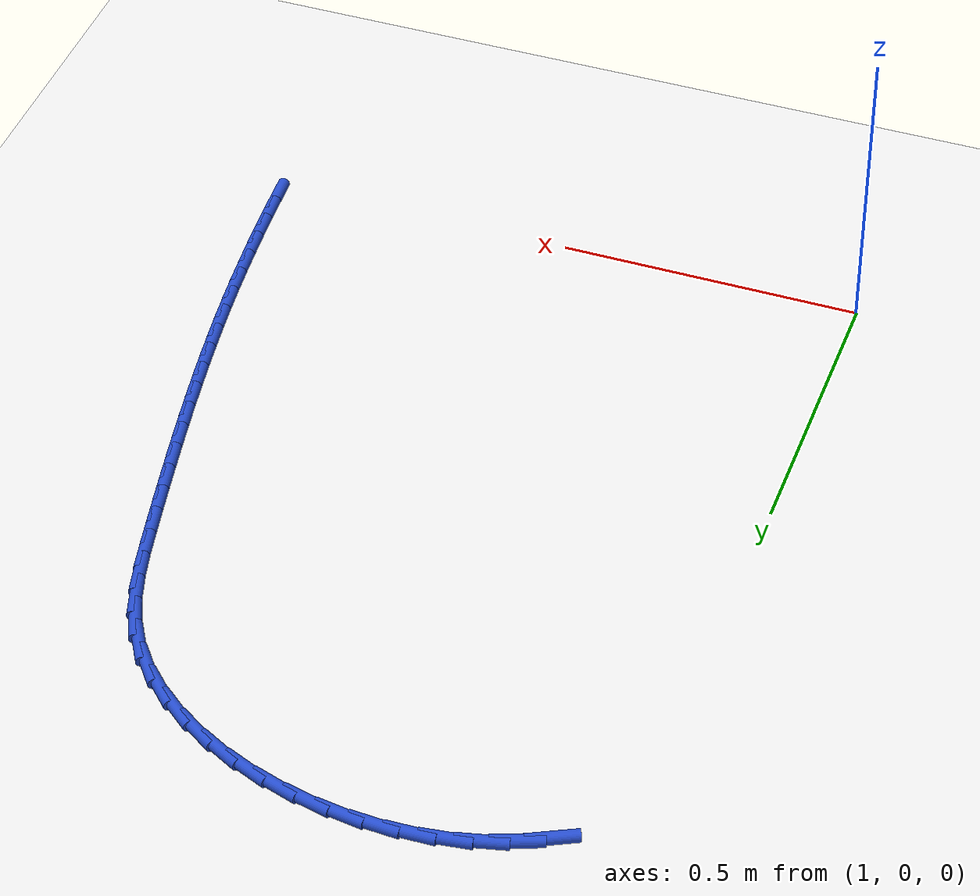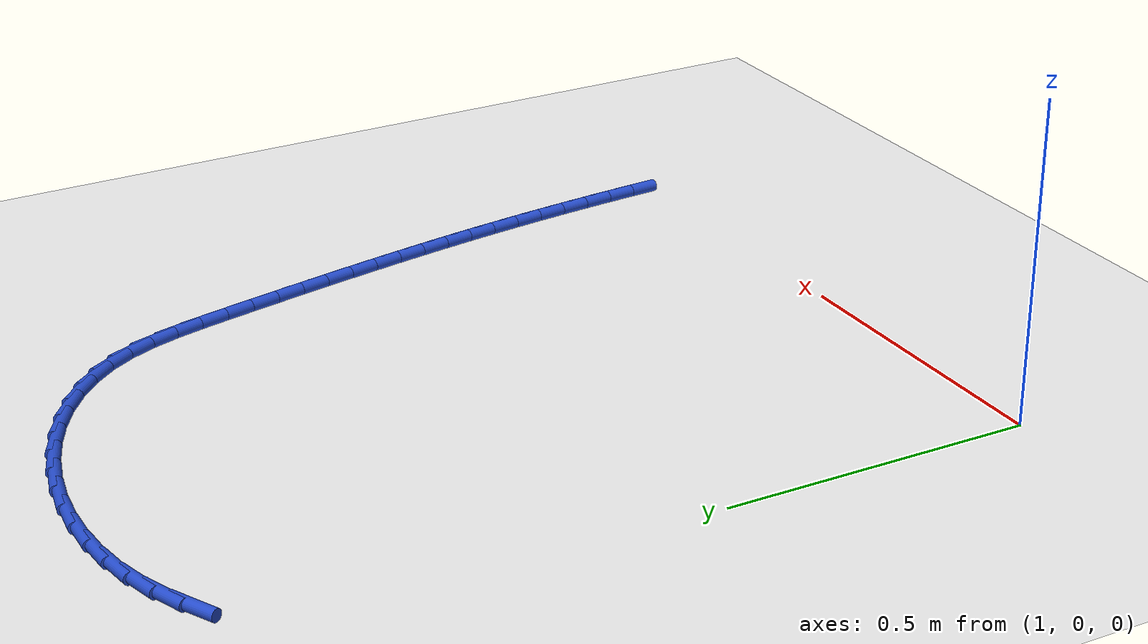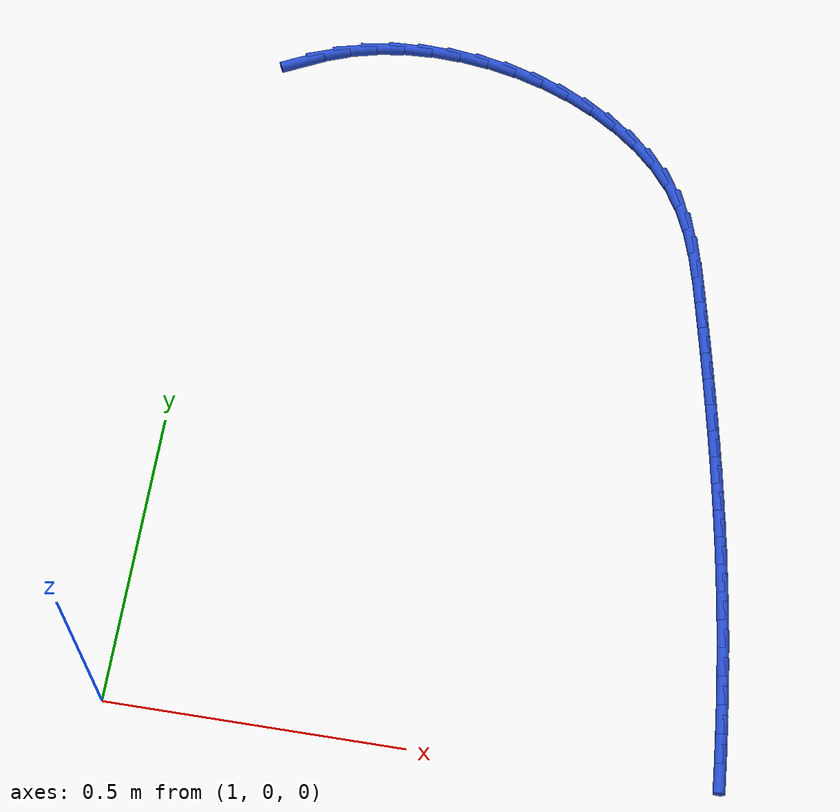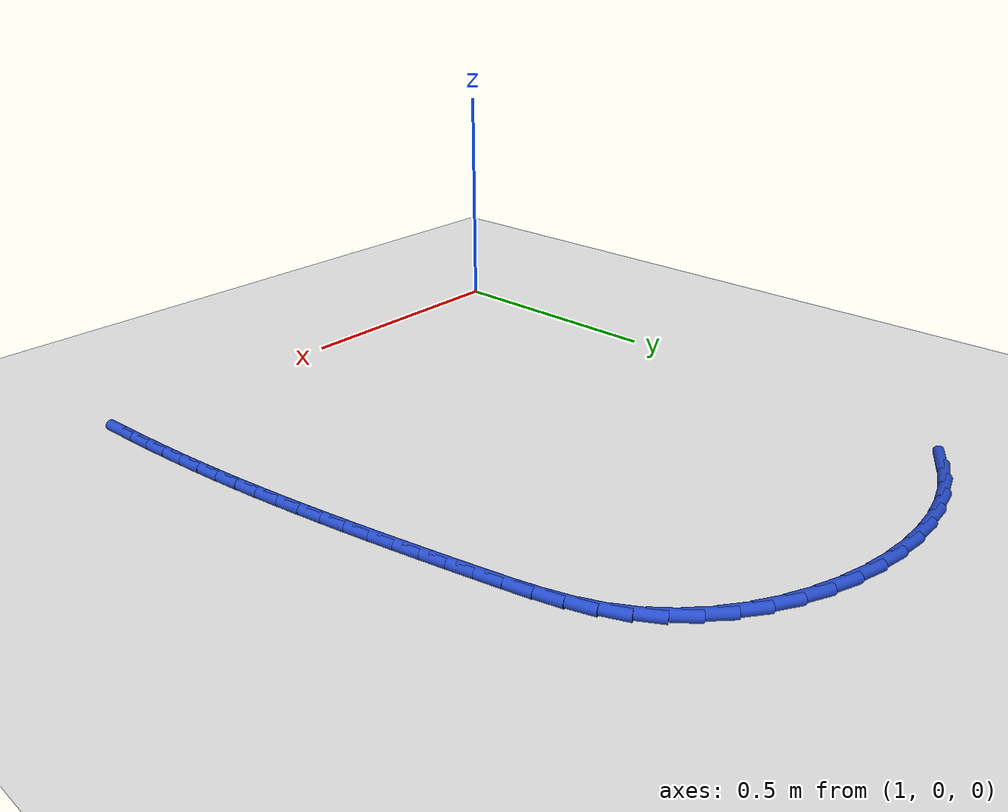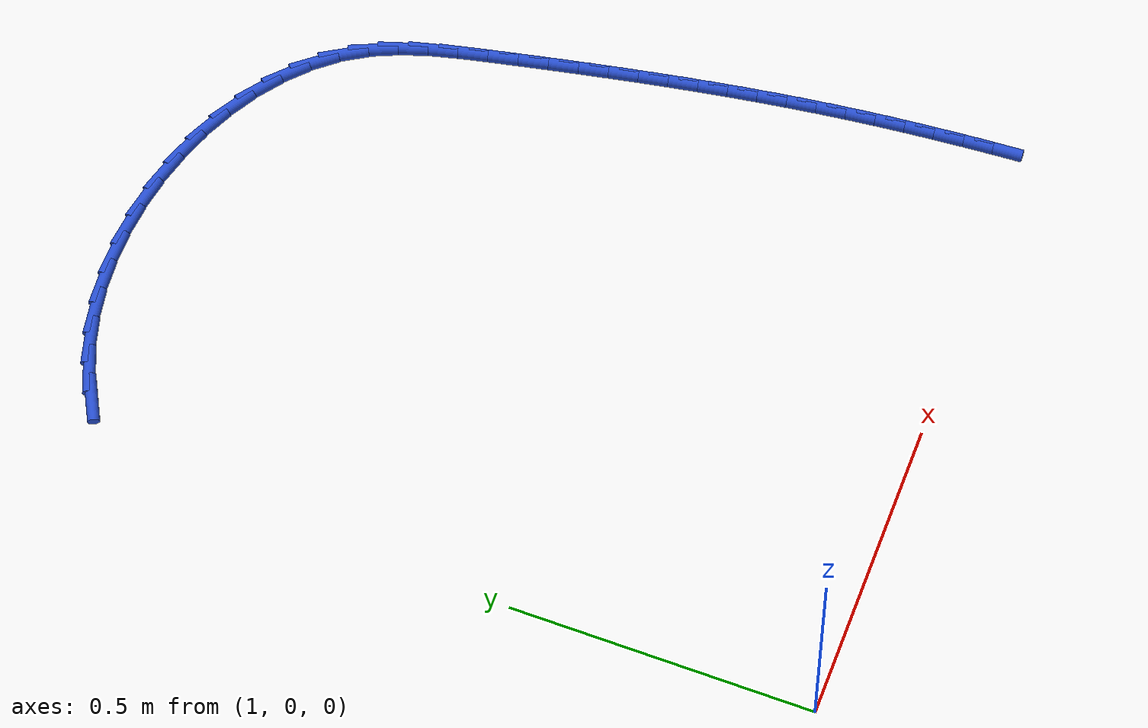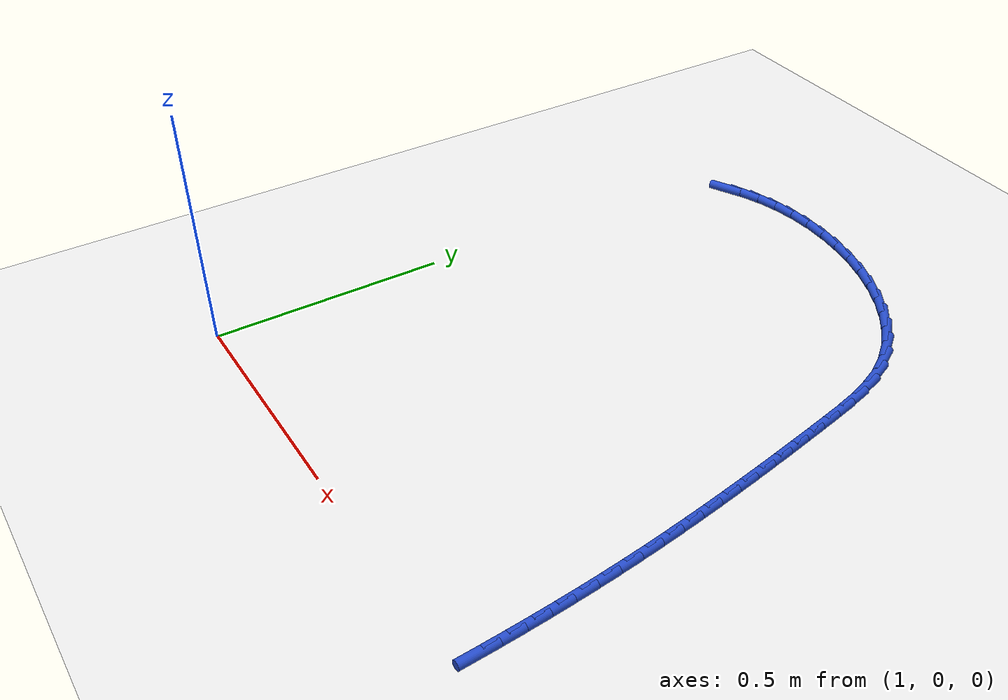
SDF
<sdf version="1.6">
 <world name="default">
  <model name="ground_plane">
   <static>1</static>
   <link name="link">
    <collision name="collision">
     <geometry><plane><normal>0 0 1</normal><size>100 100</size></plane></geometry>
     <surface><friction><ode><mu>100</mu><mu2>50</mu2></ode></friction></surface>
    </collision>
    <visual name="visual">
     <cast_shadows>0</cast_shadows>
     <geometry><plane><normal>0 0 1</normal><size>100 100</size></plane></geometry>
     <material>
      <script><uri>file://media/materials/scripts/gazebo.material</uri><name>Gazebo/WhiteGlow</name></script>
     </material>
    </visual>
   </link>
  </model>
  <model name="line">
   <link name="link_37">
    <pose>1.101944827154482 1.2344238282367026 0.01 0 1.57 0.4569146160596602</pose>
    <collision name="collision">
     <geometry><cylinder><radius>0.01</radius><length>0.08</length></cylinder></geometry>
    </collision>
    <visual name="visual">
     <material>
      <script><name>Gazebo/Blue</name><uri>file://media/materials/scripts/gazebo.material</uri></script>
     </material>
     <geometry><cylinder><radius>0.01</radius><length>0.08</length></cylinder></geometry>
    </visual>
   </link>
   <link name="link_38">
    <pose>1.146088931741145 1.2561255940719298 0.01 0 1.57 0.34975207894453036</pose>
    <collision name="collision">
     <geometry><cylinder><radius>0.01</radius><length>0.08</length></cylinder></geometry>
    </collision>
    <visual name="visual">
     <material>
      <script><name>Gazebo/Blue</name><uri>file://media/materials/scripts/gazebo.material</uri></script>
     </material>
     <geometry><cylinder><radius>0.01</radius><length>0.08</length></cylinder></geometry>
    </visual>
   </link>
   <link name="link_39">
    <pose>1.1928035203747764 1.2731646265144851 0.01 0 1.57 0.2366582090059286</pose>
    <collision name="collision">
     <geometry><cylinder><radius>0.01</radius><length>0.08</length></cylinder></geometry>
    </collision>
    <visual name="visual">
     <material>
      <script><name>Gazebo/Blue</name><uri>file://media/materials/scripts/gazebo.material</uri></script>
     </material>
     <geometry><cylinder><radius>0.01</radius><length>0.08</length></cylinder></geometry>
    </visual>
   </link>
   <link name="link_40">
    <pose>1.2420328990798146 1.2850376531378502 0.01 0 1.57 0.1330069167161616</pose>
    <collision name="collision">
     <geometry><cylinder><radius>0.01</radius><length>0.08</length></cylinder></geometry>
    </collision>
    <visual name="visual">
     <material>
      <script><name>Gazebo/Blue</name><uri>file://media/materials/scripts/gazebo.material</uri></script>
     </material>
     <geometry><cylinder><radius>0.01</radius><length>0.08</length></cylinder></geometry>
    </visual>
   </link>
   <link name="link_41">
    <pose>1.2931598435172316 1.2918782768268497 0.01 0 1.57 0.03750152560459104</pose>
    <collision name="collision">
     <geometry><cylinder><radius>0.01</radius><length>0.08</length></cylinder></geometry>
    </collision>
    <visual name="visual">
     <material>
      <script><name>Gazebo/Blue</name><uri>file://media/materials/scripts/gazebo.material</uri></script>
     </material>
     <geometry><cylinder><radius>0.01</radius><length>0.08</length></cylinder></geometry>
    </visual>
   </link>
   <link name="link_42">
    <pose>1.345546260996247 1.2938437688890414 0.01 0 1.57 -0.05187724870338346</pose>
    <collision name="collision">
     <geometry><cylinder><radius>0.01</radius><length>0.08</length></cylinder></geometry>
    </collision>
    <visual name="visual">
     <material>
      <script><name>Gazebo/Blue</name><uri>file://media/materials/scripts/gazebo.material</uri></script>
     </material>
     <geometry><cylinder><radius>0.01</radius><length>0.08</length></cylinder></geometry>
    </visual>
   </link>
   <link name="link_43">
    <pose>1.3985540588260812 1.2910914006319811 0.01 0 1.57 -0.137137323295058</pose>
    <collision name="collision">
     <geometry><cylinder><radius>0.01</radius><length>0.08</length></cylinder></geometry>
    </collision>
    <visual name="visual">
     <material>
      <script><name>Gazebo/Blue</name><uri>file://media/materials/scripts/gazebo.material</uri></script>
     </material>
     <geometry><cylinder><radius>0.01</radius><length>0.08</length></cylinder></geometry>
    </visual>
   </link>
   <link name="link_44">
    <pose>1.4515451443159546 1.2837784433632267 0.01 0 1.57 -0.22023411728320377</pose>
    <collision name="collision">
     <geometry><cylinder><radius>0.01</radius><length>0.08</length></cylinder></geometry>
    </collision>
    <visual name="visual">
     <material>
      <script><name>Gazebo/Blue</name><uri>file://media/materials/scripts/gazebo.material</uri></script>
     </material>
     <geometry><cylinder><radius>0.01</radius><length>0.08</length></cylinder></geometry>
    </visual>
   </link>
   <link name="link_45">
    <pose>1.5038814247750873 1.2720621683903344 0.01 0 1.57 -0.30308590247316947</pose>
    <collision name="collision">
     <geometry><cylinder><radius>0.01</radius><length>0.08</length></cylinder></geometry>
    </collision>
    <visual name="visual">
     <material>
      <script><name>Gazebo/Blue</name><uri>file://media/materials/scripts/gazebo.material</uri></script>
     </material>
     <geometry><cylinder><radius>0.01</radius><length>0.08</length></cylinder></geometry>
    </visual>
   </link>
   <link name="link_46">
    <pose>1.554924807512699 1.2560998470208609 0.01 0 1.57 -0.3876149464044524</pose>
    <collision name="collision">
     <geometry><cylinder><radius>0.01</radius><length>0.08</length></cylinder></geometry>
    </collision>
    <visual name="visual">
     <material>
      <script><name>Gazebo/Blue</name><uri>file://media/materials/scripts/gazebo.material</uri></script>
     </material>
     <geometry><cylinder><radius>0.01</radius><length>0.08</length></cylinder></geometry>
    </visual>
   </link>
   <link name="link_47">
    <pose>1.60403719983801 1.2360487505623643 0.01 0 1.57 -0.4757927429763021</pose>
    <collision name="collision">
     <geometry><cylinder><radius>0.01</radius><length>0.08</length></cylinder></geometry>
    </collision>
    <visual name="visual">
     <material>
      <script><name>Gazebo/Blue</name><uri>file://media/materials/scripts/gazebo.material</uri></script>
     </material>
     <geometry><cylinder><radius>0.01</radius><length>0.08</length></cylinder></geometry>
    </visual>
   </link>
   <link name="link_48">
    <pose>1.6505805090602406 1.2120661503224 0.01 0 1.57 -0.5696684634232014</pose>
    <collision name="collision">
     <geometry><cylinder><radius>0.01</radius><length>0.08</length></cylinder></geometry>
    </collision>
    <visual name="visual">
     <material>
      <script><name>Gazebo/Blue</name><uri>file://media/materials/scripts/gazebo.material</uri></script>
     </material>
     <geometry><cylinder><radius>0.01</radius><length>0.08</length></cylinder></geometry>
    </visual>
   </link>
   <link name="link_49">
    <pose>1.6939166424886103 1.1843093176085253 0.01 0 1.57 -0.6713519102458148</pose>
    <collision name="collision">
     <geometry><cylinder><radius>0.01</radius><length>0.08</length></cylinder></geometry>
    </collision>
    <visual name="visual">
     <material>
      <script><name>Gazebo/Blue</name><uri>file://media/materials/scripts/gazebo.material</uri></script>
     </material>
     <geometry><cylinder><radius>0.01</radius><length>0.08</length></cylinder></geometry>
    </visual>
   </link>
   <link name="link_50">
    <pose>1.73340750743234 1.1529355237282974 0.01 0 1.57 -0.7829065080619406</pose>
    <collision name="collision">
     <geometry><cylinder><radius>0.01</radius><length>0.08</length></cylinder></geometry>
    </collision>
    <visual name="visual">
     <material>
      <script><name>Gazebo/Blue</name><uri>file://media/materials/scripts/gazebo.material</uri></script>
     </material>
     <geometry><cylinder><radius>0.01</radius><length>0.08</length></cylinder></geometry>
    </visual>
   </link>
   <link name="link_51">
    <pose>1.7684150112006496 1.1181020399892734 0.01 0 1.57 -0.9060909009477038</pose>
    <collision name="collision">
     <geometry><cylinder><radius>0.01</radius><length>0.08</length></cylinder></geometry>
    </collision>
    <visual name="visual">
     <material>
      <script><name>Gazebo/Blue</name><uri>file://media/materials/scripts/gazebo.material</uri></script>
     </material>
     <geometry><cylinder><radius>0.01</radius><length>0.08</length></cylinder></geometry>
    </visual>
   </link>
   <link name="link_52">
    <pose>1.7983010611027588 1.0799661376990095 0.01 0 1.57 -1.0411979860862466</pose>
    <collision name="collision">
     <geometry><cylinder><radius>0.01</radius><length>0.08</length></cylinder></geometry>
    </collision>
    <visual name="visual">
     <material>
      <script><name>Gazebo/Blue</name><uri>file://media/materials/scripts/gazebo.material</uri></script>
     </material>
     <geometry><cylinder><radius>0.01</radius><length>0.08</length></cylinder></geometry>
    </visual>
   </link>
   <link name="link_53">
    <pose>1.8224604310953054 1.038694708180517 0.01 0 1.57 -1.1679520217540105</pose>
    <collision name="collision">
     <geometry><cylinder><radius>0.01</radius><length>0.08</length></cylinder></geometry>
    </collision>
    <visual name="visual">
     <material>
      <script><name>Gazebo/Blue</name><uri>file://media/materials/scripts/gazebo.material</uri></script>
     </material>
     <geometry><cylinder><radius>0.01</radius><length>0.08</length></cylinder></geometry>
    </visual>
   </link>
   <link name="link_54">
    <pose>1.8411996132791808 0.9947215012083546 0.01 0 1.57 -1.2624683397445804</pose>
    <collision name="collision">
     <geometry><cylinder><radius>0.01</radius><length>0.08</length></cylinder></geometry>
    </collision>
    <visual name="visual">
     <material>
      <script><name>Gazebo/Blue</name><uri>file://media/materials/scripts/gazebo.material</uri></script>
     </material>
     <geometry><cylinder><radius>0.01</radius><length>0.08</length></cylinder></geometry>
    </visual>
   </link>
   <link name="link_55">
    <pose>1.8558328100688124 0.9487752217639905 0.01 0 1.57 -1.3238297464606992</pose>
    <collision name="collision">
     <geometry><cylinder><radius>0.01</radius><length>0.08</length></cylinder></geometry>
    </collision>
    <visual name="visual">
     <material>
      <script><name>Gazebo/Blue</name><uri>file://media/materials/scripts/gazebo.material</uri></script>
     </material>
     <geometry><cylinder><radius>0.01</radius><length>0.08</length></cylinder></geometry>
    </visual>
   </link>
   <link name="link_56">
    <pose>1.8677263492898408 0.9015998318538947 0.01 0 1.57 -1.3535588076388507</pose>
    <collision name="collision">
     <geometry><cylinder><radius>0.01</radius><length>0.08</length></cylinder></geometry>
    </collision>
    <visual name="visual">
     <material>
      <script><name>Gazebo/Blue</name><uri>file://media/materials/scripts/gazebo.material</uri></script>
     </material>
     <geometry><cylinder><radius>0.01</radius><length>0.08</length></cylinder></geometry>
    </visual>
   </link>
   <link name="link_57">
    <pose>1.8782460705761206 0.8539390243458698 0.01 0 1.57 -1.3600616770433782</pose>
    <collision name="collision">
     <geometry><cylinder><radius>0.01</radius><length>0.08</length></cylinder></geometry>
    </collision>
    <visual name="visual">
     <material>
      <script><name>Gazebo/Blue</name><uri>file://media/materials/scripts/gazebo.material</uri></script>
     </material>
     <geometry><cylinder><radius>0.01</radius><length>0.08</length></cylinder></geometry>
    </visual>
   </link>
   <link name="link_58">
    <pose>1.8884251988642933 0.8063531226225019 0.01 0 1.57 -1.363895592016477</pose>
    <collision name="collision">
     <geometry><cylinder><radius>0.01</radius><length>0.08</length></cylinder></geometry>
    </collision>
    <visual name="visual">
     <material>
      <script><name>Gazebo/Blue</name><uri>file://media/materials/scripts/gazebo.material</uri></script>
     </material>
     <geometry><cylinder><radius>0.01</radius><length>0.08</length></cylinder></geometry>
    </visual>
   </link>
   <link name="link_59">
    <pose>1.8983857962504922 0.7589001287245609 0.01 0 1.57 -1.3685308264803924</pose>
    <collision name="collision">
     <geometry><cylinder><radius>0.01</radius><length>0.08</length></cylinder></geometry>
    </collision>
    <visual name="visual">
     <material>
      <script><name>Gazebo/Blue</name><uri>file://media/materials/scripts/gazebo.material</uri></script>
     </material>
     <geometry><cylinder><radius>0.01</radius><length>0.08</length></cylinder></geometry>
    </visual>
   </link>
   <link name="link_60">
    <pose>1.908095299466066 0.71155280019286 0.01 0 1.57 -1.373969089016939</pose>
    <collision name="collision">
     <geometry><cylinder><radius>0.01</radius><length>0.08</length></cylinder></geometry>
    </collision>
    <visual name="visual">
     <material>
      <script><name>Gazebo/Blue</name><uri>file://media/materials/scripts/gazebo.material</uri></script>
     </material>
     <geometry><cylinder><radius>0.01</radius><length>0.08</length></cylinder></geometry>
    </visual>
   </link>
   <link name="link_61">
    <pose>1.9175211452423655 0.6642838945682128 0.01 0 1.57 -1.3802098450093578</pose>
    <collision name="collision">
     <geometry><cylinder><radius>0.01</radius><length>0.08</length></cylinder></geometry>
    </collision>
    <visual name="visual">
     <material>
      <script><name>Gazebo/Blue</name><uri>file://media/materials/scripts/gazebo.material</uri></script>
     </material>
     <geometry><cylinder><radius>0.01</radius><length>0.08</length></cylinder></geometry>
    </visual>
   </link>
   <link name="link_62">
    <pose>1.9266307703107397 0.6170661693914327 0.01 0 1.57 -1.3872501850786234</pose>
    <collision name="collision">
     <geometry><cylinder><radius>0.01</radius><length>0.08</length></cylinder></geometry>
    </collision>
    <visual name="visual">
     <material>
      <script><name>Gazebo/Blue</name><uri>file://media/materials/scripts/gazebo.material</uri></script>
     </material>
     <geometry><cylinder><radius>0.01</radius><length>0.08</length></cylinder></geometry>
    </visual>
   </link>
   <link name="link_63">
    <pose>1.9353916114025382 0.569872382203334 0.01 0 1.57 -1.3950846939514612</pose>
    <collision name="collision">
     <geometry><cylinder><radius>0.01</radius><length>0.08</length></cylinder></geometry>
    </collision>
    <visual name="visual">
     <material>
      <script><name>Gazebo/Blue</name><uri>file://media/materials/scripts/gazebo.material</uri></script>
     </material>
     <geometry><cylinder><radius>0.01</radius><length>0.08</length></cylinder></geometry>
    </visual>
   </link>
   <link name="link_64">
    <pose>1.9437711052491107 0.5226752905447302 0.01 0 1.57 -1.403705322986966</pose>
    <collision name="collision">
     <geometry><cylinder><radius>0.01</radius><length>0.08</length></cylinder></geometry>
    </collision>
    <visual name="visual">
     <material>
      <script><name>Gazebo/Blue</name><uri>file://media/materials/scripts/gazebo.material</uri></script>
     </material>
     <geometry><cylinder><radius>0.01</radius><length>0.08</length></cylinder></geometry>
    </visual>
   </link>
   <link name="link_65">
    <pose>1.9517366885818068 0.47544765195643496 0.01 0 1.57 -1.4131012701373682</pose>
    <collision name="collision">
     <geometry><cylinder><radius>0.01</radius><length>0.08</length></cylinder></geometry>
    </collision>
    <visual name="visual">
     <material>
      <script><name>Gazebo/Blue</name><uri>file://media/materials/scripts/gazebo.material</uri></script>
     </material>
     <geometry><cylinder><radius>0.01</radius><length>0.08</length></cylinder></geometry>
    </visual>
   </link>
   <link name="link_66">
    <pose>1.9592557981319767 0.42816222397926196 0.01 0 1.57 -1.4232588716117494</pose>
    <collision name="collision">
     <geometry><cylinder><radius>0.01</radius><length>0.08</length></cylinder></geometry>
    </collision>
    <visual name="visual">
     <material>
      <script><name>Gazebo/Blue</name><uri>file://media/materials/scripts/gazebo.material</uri></script>
     </material>
     <geometry><cylinder><radius>0.01</radius><length>0.08</length></cylinder></geometry>
    </visual>
   </link>
   <link name="link_67">
    <pose>1.9662958706309694 0.3807917641540243 0.01 0 1.57 -1.4341615099160814</pose>
    <collision name="collision">
     <geometry><cylinder><radius>0.01</radius><length>0.08</length></cylinder></geometry>
    </collision>
    <visual name="visual">
     <material>
      <script><name>Gazebo/Blue</name><uri>file://media/materials/scripts/gazebo.material</uri></script>
     </material>
     <geometry><cylinder><radius>0.01</radius><length>0.08</length></cylinder></geometry>
    </visual>
   </link>
   <link name="link_68">
    <pose>1.9728243428101344 0.3333090300215366 0.01 0 1.57 -1.4457895019869569</pose>
    <collision name="collision">
     <geometry><cylinder><radius>0.01</radius><length>0.08</length></cylinder></geometry>
    </collision>
    <visual name="visual">
     <material>
      <script><name>Gazebo/Blue</name><uri>file://media/materials/scripts/gazebo.material</uri></script>
     </material>
     <geometry><cylinder><radius>0.01</radius><length>0.08</length></cylinder></geometry>
    </visual>
   </link>
   <link name="link_69">
    <pose>1.978808653214574 0.285686780562777 0.01 0 1.57 -1.457825893301726</pose>
    <collision name="collision">
     <geometry><cylinder><radius>0.01</radius><length>0.08</length></cylinder></geometry>
    </collision>
    <visual name="visual">
     <material>
      <script><name>Gazebo/Blue</name><uri>file://media/materials/scripts/gazebo.material</uri></script>
     </material>
     <geometry><cylinder><radius>0.01</radius><length>0.08</length></cylinder></geometry>
    </visual>
   </link>
   <link name="link_70">
    <pose>1.9842293056223346 0.23790814888400266 0.01 0 1.57 -1.4692637544936353</pose>
    <collision name="collision">
     <geometry><cylinder><radius>0.01</radius><length>0.08</length></cylinder></geometry>
    </collision>
    <visual name="visual">
     <material>
      <script><name>Gazebo/Blue</name><uri>file://media/materials/scripts/gazebo.material</uri></script>
     </material>
     <geometry><cylinder><radius>0.01</radius><length>0.08</length></cylinder></geometry>
    </visual>
   </link>
   <link name="link_71">
    <pose>1.9891111919835263 0.18999151342232792 0.01 0 1.57 -1.4799056341107009</pose>
    <collision name="collision">
     <geometry><cylinder><radius>0.01</radius><length>0.08</length></cylinder></geometry>
    </collision>
    <visual name="visual">
     <material>
      <script><name>Gazebo/Blue</name><uri>file://media/materials/scripts/gazebo.material</uri></script>
     </material>
     <geometry><cylinder><radius>0.01</radius><length>0.08</length></cylinder></geometry>
    </visual>
   </link>
   <link name="link_72">
    <pose>1.9934886221187929 0.14196273064217757 0.01 0 1.57 -1.4897670715783402</pose>
    <collision name="collision">
     <geometry><cylinder><radius>0.01</radius><length>0.08</length></cylinder></geometry>
    </collision>
    <visual name="visual">
     <material>
      <script><name>Gazebo/Blue</name><uri>file://media/materials/scripts/gazebo.material</uri></script>
     </material>
     <geometry><cylinder><radius>0.01</radius><length>0.08</length></cylinder></geometry>
    </visual>
   </link>
   <link name="link_73">
    <pose>1.9973959058487778 0.09384765700797532 0.01 0 1.57 -1.498862318180597</pose>
    <collision name="collision">
     <geometry><cylinder><radius>0.01</radius><length>0.08</length></cylinder></geometry>
    </collision>
    <visual name="visual">
     <material>
      <script><name>Gazebo/Blue</name><uri>file://media/materials/scripts/gazebo.material</uri></script>
     </material>
     <geometry><cylinder><radius>0.01</radius><length>0.08</length></cylinder></geometry>
    </visual>
   </link>
   <link name="link_74">
    <pose>2.000867352994125 0.0456721489841452 0.01 0 1.57 -1.5072042174490115</pose>
    <collision name="collision">
     <geometry><cylinder><radius>0.01</radius><length>0.08</length></cylinder></geometry>
    </collision>
    <visual name="visual">
     <material>
      <script><name>Gazebo/Blue</name><uri>file://media/materials/scripts/gazebo.material</uri></script>
     </material>
     <geometry><cylinder><radius>0.01</radius><length>0.08</length></cylinder></geometry>
    </visual>
   </link>
  </model>
 </world>
</sdf>
